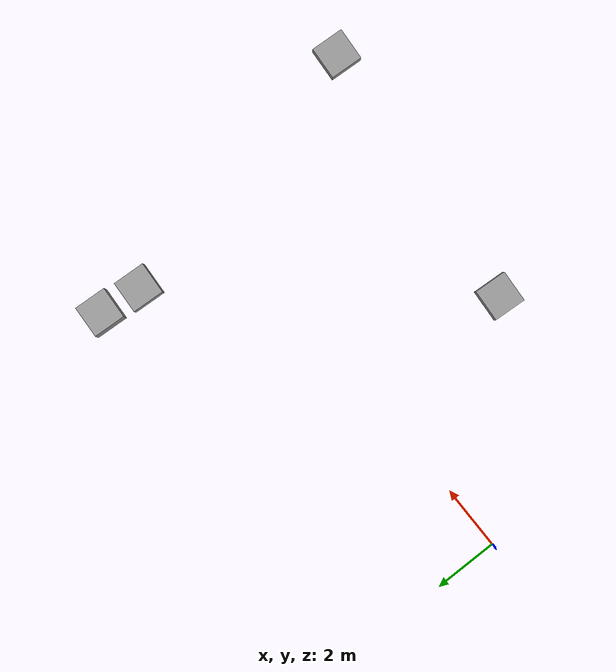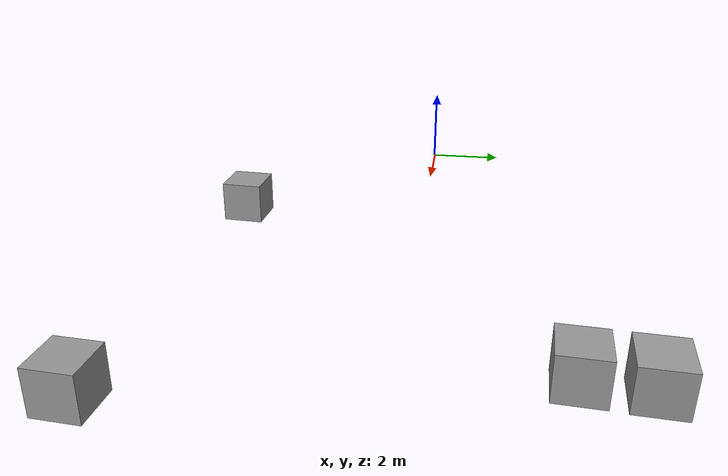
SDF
<sdf version="1.6">
 <world name="default">
  <light name="sun" type="directional">
   <cast_shadows>0</cast_shadows>
   <pose>0 0 10 0 -0 0</pose>
   <diffuse>0.8 0.8 0.8 1</diffuse>
   <specular>0.1 0.1 0.1 1</specular>
   <attenuation>
    <range>1000</range>
    <constant>0.9</constant>
    <linear>0.01</linear>
    <quadratic>0.001</quadratic>
   </attenuation>
   <direction>-0.5 0.5 -1</direction>
  </light>
  <gravity>0 0 -9.8</gravity>
  <magnetic_field>6e-06 2.3e-05 -4.2e-05</magnetic_field>
  <atmosphere type="adiabatic"/>
  <physics name="default_physics" default="0" type="ode">
   <max_step_size>0.001</max_step_size>
   <real_time_factor>1</real_time_factor>
   <real_time_update_rate>1000</real_time_update_rate>
  </physics>
  <scene><ambient>0.4 0.4 0.4 1</ambient><background>0.7 0.7 0.7 1</background><shadows>1</shadows></scene>
  <spherical_coordinates>
   <surface_model>EARTH_WGS84</surface_model>
   <latitude_deg>0</latitude_deg>
   <longitude_deg>0</longitude_deg>
   <elevation>0</elevation>
   <heading_deg>0</heading_deg>
  </spherical_coordinates>
  <model name="unit_box_clone">
   <pose>12.359 4.69547 0.527017 1.7e-05 0.05559 -0.057644</pose>
   <link name="link">
    <inertial>
     <mass>1</mass>
     <inertia>
      <ixx>0.166667</ixx>
      <ixy>0</ixy>
      <ixz>0</ixz>
      <iyy>0.166667</iyy>
      <iyz>0</iyz>
      <izz>0.166667</izz>
     </inertia>
    </inertial>
    <collision name="collision"><geometry><box><size>1 1 1</size></box></geometry></collision>
    <visual name="visual">
     <geometry><box><size>1 1 1</size></box></geometry>
     <material>
      <script><name>Gazebo/Grey</name><uri>file://media/materials/scripts/gazebo.material</uri></script>
     </material>
    </visual>
   </link>
  </model>
  <model name="unit_box_clone_clone">
   <pose>12.2381 3.37815 0.513399 -0.002785 0.024316 -0.057932</pose>
   <link name="link">
    <inertial>
     <mass>1</mass>
     <inertia>
      <ixx>0.166667</ixx>
      <ixy>0</ixy>
      <ixz>0</ixz>
      <iyy>0.166667</iyy>
      <iyz>0</iyz>
      <izz>0.166667</izz>
     </inertia>
    </inertial>
    <collision name="collision"><geometry><box><size>1 1 1</size></box></geometry></collision>
    <visual name="visual">
     <geometry><box><size>1 1 1</size></box></geometry>
     <material>
      <script><name>Gazebo/Grey</name><uri>file://media/materials/scripts/gazebo.material</uri></script>
     </material>
    </visual>
   </link>
  </model>
  <model name="unit_box_clone_clone_0">
   <pose>5.56505 -4.6353 0.5 -8e-06 -9e-06 -0.058575</pose>
   <link name="link">
    <inertial>
     <mass>1</mass>
     <inertia>
      <ixx>0.166667</ixx>
      <ixy>0</ixy>
      <ixz>0</ixz>
      <iyy>0.166667</iyy>
      <iyz>0</iyz>
      <izz>0.166667</izz>
     </inertia>
    </inertial>
    <collision name="collision"><geometry><box><size>1 1 1</size></box></geometry></collision>
    <visual name="visual">
     <geometry><box><size>1 1 1</size></box></geometry>
     <material>
      <script><name>Gazebo/Grey</name><uri>file://media/materials/scripts/gazebo.material</uri></script>
     </material>
    </visual>
   </link>
  </model>
  <model name="unit_box_clone_clone_1">
   <pose>13.9702 -5.30448 0.5 -0 -0 -0.058568</pose>
   <link name="link">
    <inertial>
     <mass>1</mass>
     <inertia>
      <ixx>0.166667</ixx>
      <ixy>0</ixy>
      <ixz>0</ixz>
      <iyy>0.166667</iyy>
      <iyz>0</iyz>
      <izz>0.166667</izz>
     </inertia>
    </inertial>
    <collision name="collision"><geometry><box><size>1 1 1</size></box></geometry></collision>
    <visual name="visual">
     <geometry><box><size>1 1 1</size></box></geometry>
     <material>
      <script><name>Gazebo/Grey</name><uri>file://media/materials/scripts/gazebo.material</uri></script>
     </material>
    </visual>
   </link>
  </model>
 </world>
</sdf>
